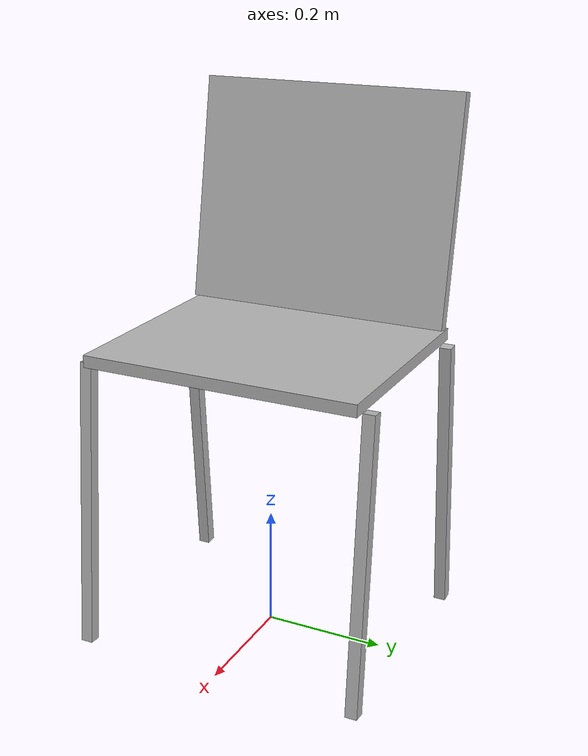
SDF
<?xml version="1.0" ?>
<sdf version="1.6">
  <model name="rwc2023/chair">
    <static>true</static>
    <link name="1_link">
      <collision name="1_col">
        <geometry>
          <box>
            <size>0.38 0.46 0.02</size>
          </box>
        </geometry>
      </collision>
      <visual name="1_vis">
        <geometry>
          <box>
            <size>0.38 0.46 0.02</size>
          </box>
        </geometry>
      </visual>
      <pose>0.0 0.0 0.495 0 0 0</pose>
    </link>
    <link name="back_link">
      <collision name="back_col">
        <geometry>
          <box>
            <size>0.38 0.46 0.02</size>
          </box>
        </geometry>
      </collision>
      <visual name="back_vis">
        <geometry>
          <box>
            <size>0.38 0.46 0.02</size>
          </box>
        </geometry>
      </visual>
      <pose>-0.2 0 0.695 0 1.4 0</pose>
    </link>
    <link name="2_link">
      <collision name="2_col">
        <geometry>
          <box>
            <size>0.02 0.02 0.485</size>
          </box>
        </geometry>
      </collision>
      <visual name="2_vis">
        <geometry>
          <box>
            <size>0.02 0.02 0.485</size>
          </box>
        </geometry>
      </visual>
      <pose>-0.18 -0.24 0.2425 0 0.08 0</pose>
    </link>
    <link name="3_link">
      <collision name="3_col">
        <geometry>
          <box>
            <size>0.02 0.02 0.485</size>
          </box>
        </geometry>
      </collision>
      <visual name="3_vis">
        <geometry>
          <box>
            <size>0.02 0.02 0.485</size>
          </box>
        </geometry>
      </visual>
      <pose>0.18 -0.24 0.2425 0 -0.08 0</pose>
    </link>
    <link name="4_link">
      <collision name="4_col">
        <geometry>
          <box>
            <size>0.02 0.02 0.485</size>
          </box>
        </geometry>
      </collision>
      <visual name="4_vis">
        <geometry>
          <box>
            <size>0.02 0.02 0.485</size>
          </box>
        </geometry>
      </visual>
      <pose>-0.18 0.24 0.2425 0 0.08 0</pose>
    </link>
    <link name="5_link">
      <collision name="5_col">
        <geometry>
          <box>
            <size>0.02 0.02 0.485</size>
          </box>
        </geometry>
      </collision>
      <visual name="5_vis">
        <geometry>
          <box>
            <size>0.02 0.02 0.485</size>
          </box>
        </geometry>
      </visual>
      <pose>0.18 0.24 0.2425 0 -0.08 0</pose>
    </link>
    <link name="on_top_of">
      <virtual_volume name="on_top_of_vv">
        <geometry>
          <box>
            <size>0.3 0.4 0.25</size>
          </box>
        </geometry>
        <pose>0.02 0.0 0.65 0 0 0</pose>
      </virtual_volume>
    </link>
    <link name="in_front_of">
      <virtual_volume name="in_front_of_vv">
        <geometry>
          <box>
            <size>0.2 0.26 0.01</size>
          </box>
        </geometry>
        <pose>0.69 0.0 0.005 0 0 0</pose>
      </virtual_volume>
    </link>
  </model>
</sdf>
